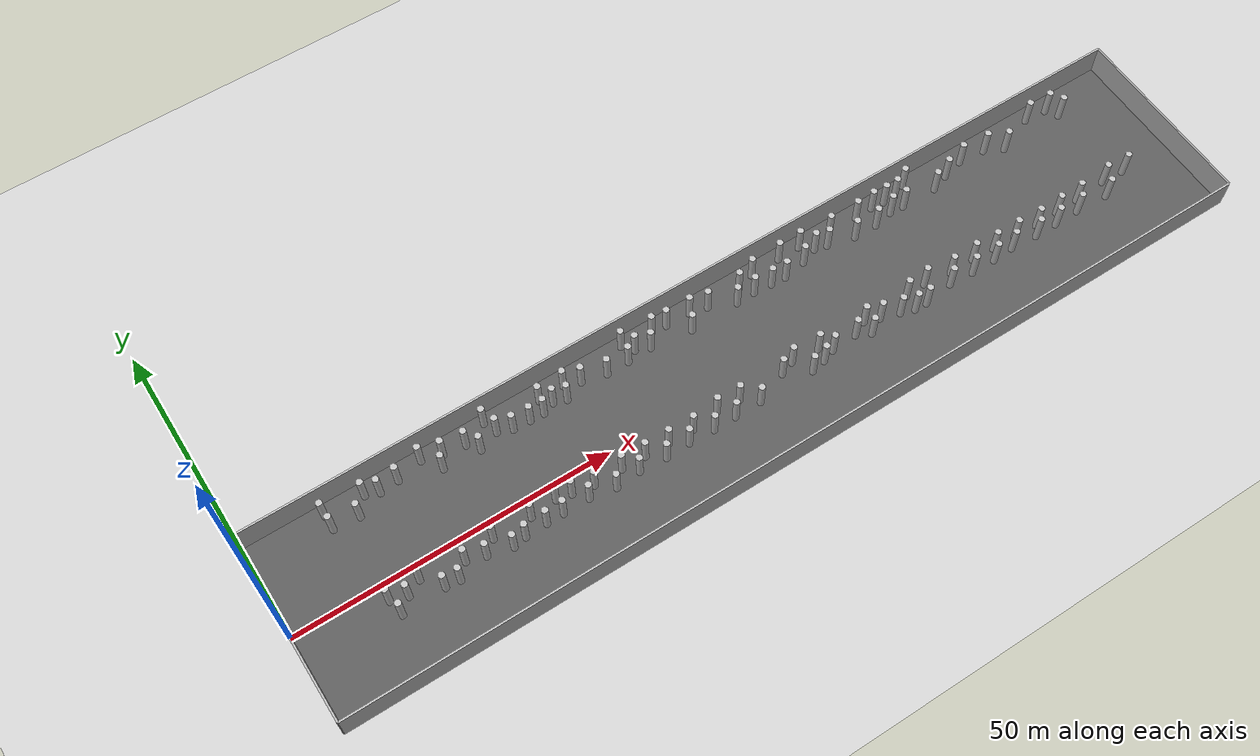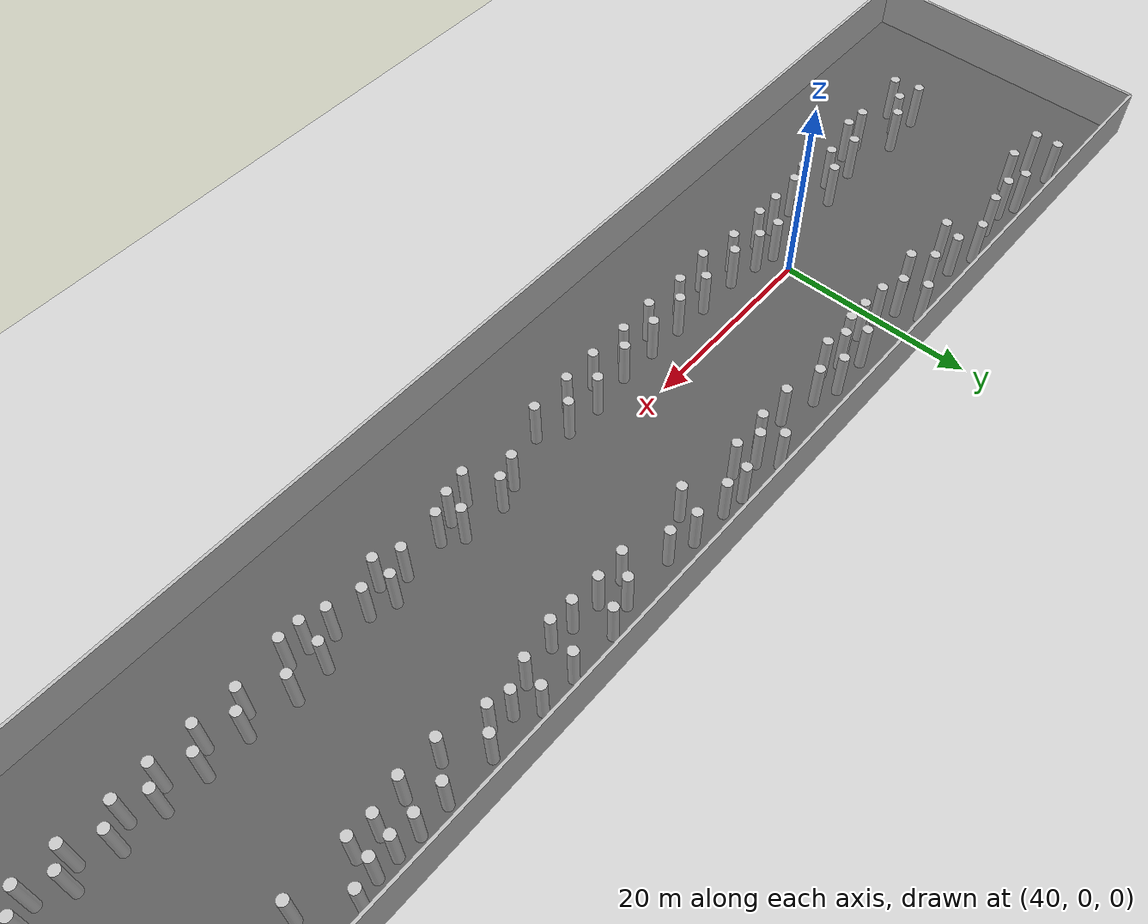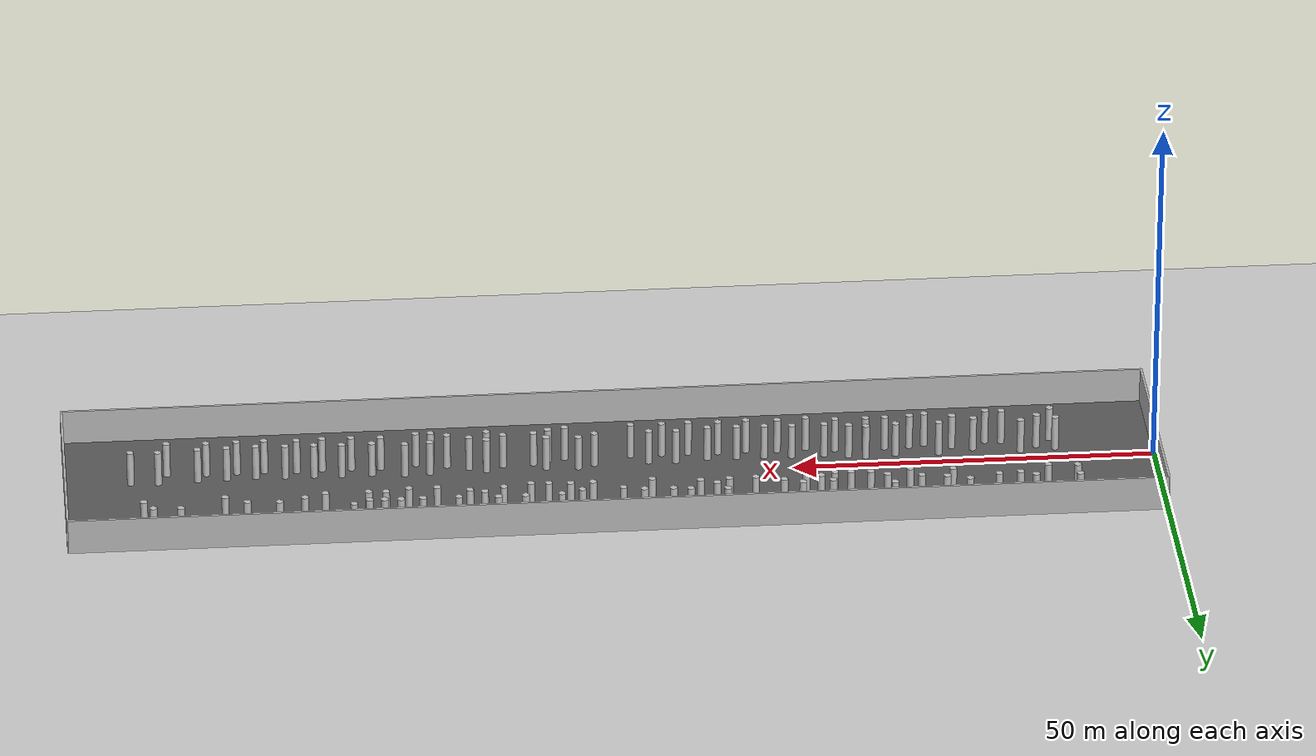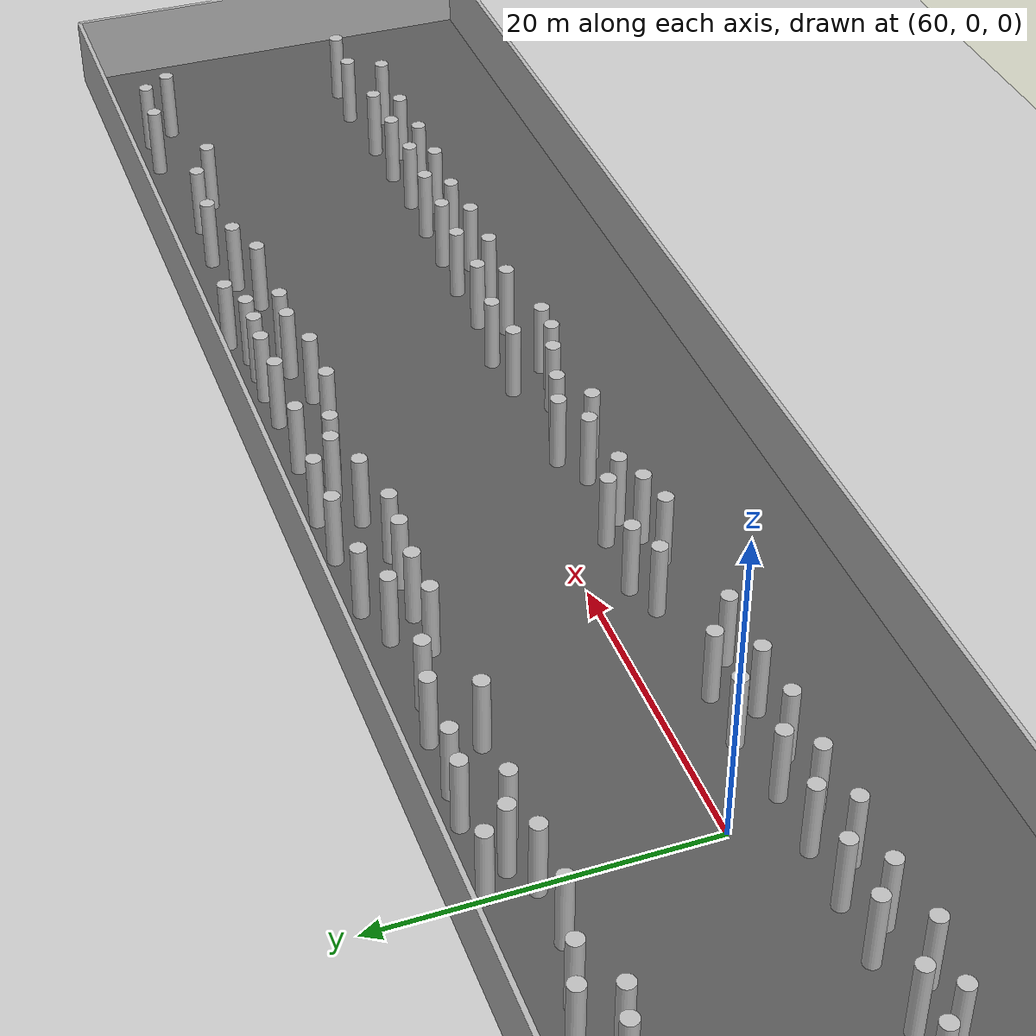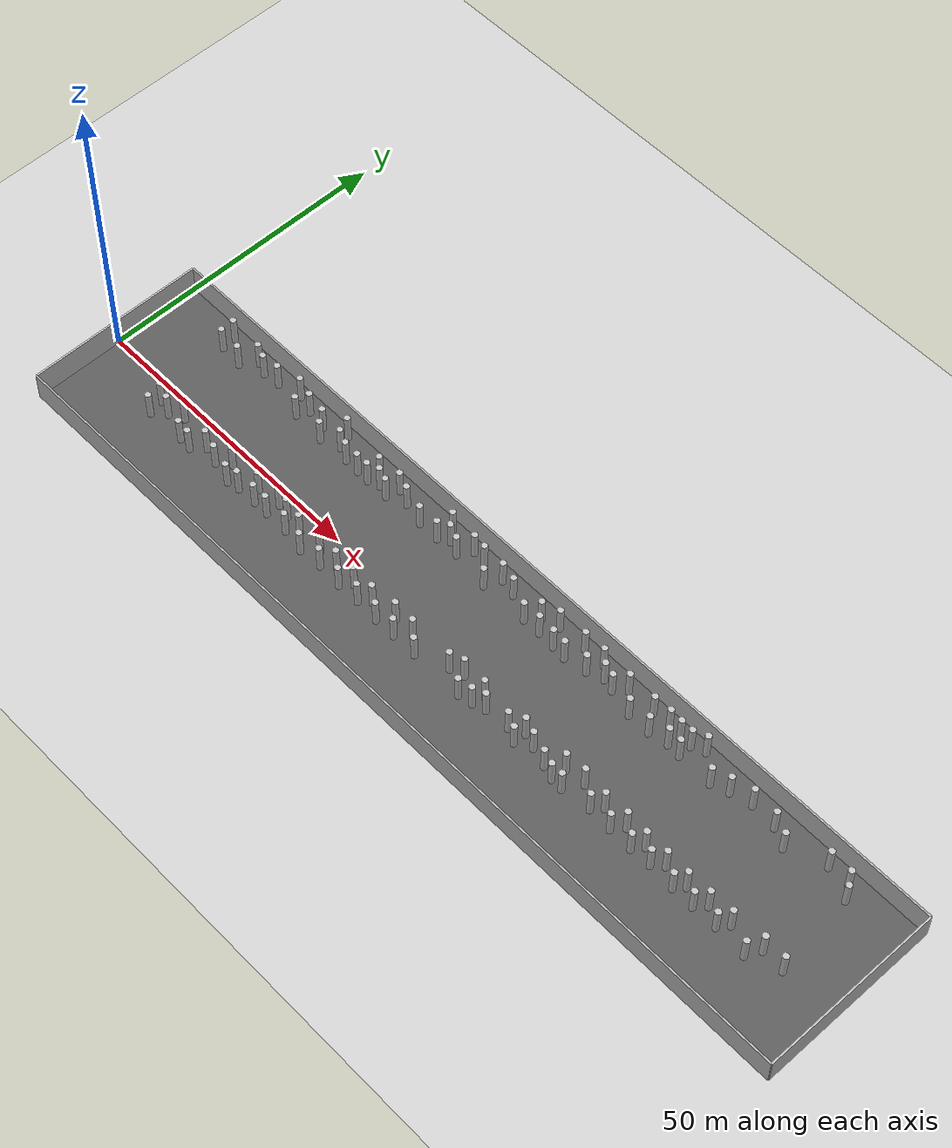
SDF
<?xml version="1.0" ?>
<sdf version="1.5">
  <world name="default">
    <plugin name="gazebo_ros_state" filename="libgazebo_ros_state.so">
      <ros>
        <namespace>/gazebo</namespace>
      </ros>
      <update_rate>20.0</update_rate>
    </plugin>

    <include><uri>model://sun</uri></include>
    <include><uri>model://ground_plane</uri></include>

    <model name="corridor_floor">
      <static>true</static>
      <pose>75 0 0.01 0 0 0</pose>
      <link name="link">
        <collision name="collision">
          <geometry><box><size>150 30 0.02</size></box></geometry>
        </collision>
        <visual name="visual">
          <geometry><box><size>150 30 0.02</size></box></geometry>
          <material>
            <ambient>0.25 0.25 0.25 1</ambient>
            <diffuse>0.35 0.35 0.35 1</diffuse>
          </material>
        </visual>
      </link>
    </model>

    <physics name="default_physics" default="0" type="ode">
      <gravity>0 0 -9.8066</gravity>
      <ode>
        <solver>
          <type>quick</type>
          <iters>10</iters>
          <sor>1.3</sor>
          <use_dynamic_moi_rescaling>0</use_dynamic_moi_rescaling>
        </solver>
        <constraints>
          <cfm>0</cfm>
          <erp>0.2</erp>
          <contact_max_correcting_vel>100</contact_max_correcting_vel>
          <contact_surface_layer>0.001</contact_surface_layer>
        </constraints>
      </ode>
      <max_step_size>0.004</max_step_size>
      <real_time_factor>1</real_time_factor>
      <real_time_update_rate>250</real_time_update_rate>
      <magnetic_field>6.0e-6 2.3e-5 -4.2e-5</magnetic_field>
    </physics>

    <model name="left_wall">
      <static>true</static>
      <pose>75 15.15 2.5 0 0 0</pose>
      <link name="link">
        <collision name="collision">
          <geometry><box><size>150 0.3 5</size></box></geometry>
        </collision>
        <visual name="visual">
          <geometry><box><size>150 0.3 5</size></box></geometry>
        </visual>
      </link>
    </model>

    <model name="right_wall">
      <static>true</static>
      <pose>75 -15.15 2.5 0 0 0</pose>
      <link name="link">
        <collision name="collision">
          <geometry><box><size>150 0.3 5</size></box></geometry>
        </collision>
        <visual name="visual">
          <geometry><box><size>150 0.3 5</size></box></geometry>
        </visual>
      </link>
    </model>

    <model name="start_wall">
      <static>true</static>
      <pose>0 0 2.5 0 0 0</pose>
      <link name="link">
        <collision name="collision">
          <geometry><box><size>0.3 30.3 5</size></box></geometry>
        </collision>
        <visual name="visual">
          <geometry><box><size>0.3 30.3 5</size></box></geometry>
        </visual>
      </link>
    </model>

    <model name="end_wall">
      <static>true</static>
      <pose>150 0 2.5 0 0 0</pose>
      <link name="link">
        <collision name="collision">
          <geometry><box><size>0.3 30.3 5</size></box></geometry>
        </collision>
        <visual name="visual">
          <geometry><box><size>0.3 30.3 5</size></box></geometry>
        </visual>
      </link>
    </model>

    <include><name>cylinder_000</name><uri>model://cylinder_r05_h5</uri><pose>35.606 -2.594 2.5 0 0 0</pose></include>
    <include><name>cylinder_001</name><uri>model://cylinder_r05_h5</uri><pose>24.791 -3.308 2.5 0 0 0</pose></include>
    <include><name>cylinder_002</name><uri>model://cylinder_r05_h5</uri><pose>15.996 -3.470 2.5 0 0 0</pose></include>
    <include><name>cylinder_003</name><uri>model://cylinder_r05_h5</uri><pose>29.619 -2.472 2.5 0 0 0</pose></include>
    <include><name>cylinder_004</name><uri>model://cylinder_r05_h5</uri><pose>39.739 -2.212 2.5 0 0 0</pose></include>
    <include><name>cylinder_005</name><uri>model://cylinder_r05_h5</uri><pose>27.653 -4.179 2.5 0 0 0</pose></include>
    <include><name>cylinder_006</name><uri>model://cylinder_r05_h5</uri><pose>36.921 -4.528 2.5 0 0 0</pose></include>
    <include><name>cylinder_007</name><uri>model://cylinder_r05_h5</uri><pose>20.718 -5.039 2.5 0 0 0</pose></include>
    <include><name>cylinder_008</name><uri>model://cylinder_r05_h5</uri><pose>42.085 -2.692 2.5 0 0 0</pose></include>
    <include><name>cylinder_009</name><uri>model://cylinder_r05_h5</uri><pose>33.499 -4.661 2.5 0 0 0</pose></include>
    <include><name>cylinder_010</name><uri>model://cylinder_r05_h5</uri><pose>39.605 -4.525 2.5 0 0 0</pose></include>
    <include><name>cylinder_011</name><uri>model://cylinder_r05_h5</uri><pose>31.410 -5.068 2.5 0 0 0</pose></include>
    <include><name>cylinder_012</name><uri>model://cylinder_r05_h5</uri><pose>22.955 -5.229 2.5 0 0 0</pose></include>
    <include><name>cylinder_013</name><uri>model://cylinder_r05_h5</uri><pose>18.320 -2.205 2.5 0 0 0</pose></include>
    <include><name>cylinder_014</name><uri>model://cylinder_r05_h5</uri><pose>43.799 -4.543 2.5 0 0 0</pose></include>
    <include><name>cylinder_015</name><uri>model://cylinder_r05_h5</uri><pose>47.811 -5.232 2.5 0 0 0</pose></include>
    <include><name>cylinder_016</name><uri>model://cylinder_r05_h5</uri><pose>45.416 -3.224 2.5 0 0 0</pose></include>
    <include><name>cylinder_017</name><uri>model://cylinder_r05_h5</uri><pose>51.770 -4.909 2.5 0 0 0</pose></include>
    <include><name>cylinder_018</name><uri>model://cylinder_r05_h5</uri><pose>49.899 -3.228 2.5 0 0 0</pose></include>
    <include><name>cylinder_019</name><uri>model://cylinder_r05_h5</uri><pose>56.079 -5.179 2.5 0 0 0</pose></include>
    <include><name>cylinder_020</name><uri>model://cylinder_r05_h5</uri><pose>53.679 -3.387 2.5 0 0 0</pose></include>
    <include><name>cylinder_021</name><uri>model://cylinder_r05_h5</uri><pose>59.954 -5.020 2.5 0 0 0</pose></include>
    <include><name>cylinder_022</name><uri>model://cylinder_r05_h5</uri><pose>57.510 -3.481 2.5 0 0 0</pose></include>
    <include><name>cylinder_023</name><uri>model://cylinder_r05_h5</uri><pose>64.063 -5.213 2.5 0 0 0</pose></include>
    <include><name>cylinder_024</name><uri>model://cylinder_r05_h5</uri><pose>61.547 -3.582 2.5 0 0 0</pose></include>
    <include><name>cylinder_025</name><uri>model://cylinder_r05_h5</uri><pose>67.719 -5.173 2.5 0 0 0</pose></include>
    <include><name>cylinder_026</name><uri>model://cylinder_r05_h5</uri><pose>65.911 -3.068 2.5 0 0 0</pose></include>
    <include><name>cylinder_027</name><uri>model://cylinder_r05_h5</uri><pose>72.026 -5.154 2.5 0 0 0</pose></include>
    <include><name>cylinder_028</name><uri>model://cylinder_r05_h5</uri><pose>69.657 -3.242 2.5 0 0 0</pose></include>
    <include><name>cylinder_029</name><uri>model://cylinder_r05_h5</uri><pose>99.867 -2.539 2.5 0 0 0</pose></include>
    <include><name>cylinder_030</name><uri>model://cylinder_r05_h5</uri><pose>99.619 -5.038 2.5 0 0 0</pose></include>
    <include><name>cylinder_031</name><uri>model://cylinder_r05_h5</uri><pose>94.399 -3.435 2.5 0 0 0</pose></include>
    <include><name>cylinder_032</name><uri>model://cylinder_r05_h5</uri><pose>79.409 -2.376 2.5 0 0 0</pose></include>
    <include><name>cylinder_033</name><uri>model://cylinder_r05_h5</uri><pose>89.729 -3.761 2.5 0 0 0</pose></include>
    <include><name>cylinder_034</name><uri>model://cylinder_r05_h5</uri><pose>91.938 -4.820 2.5 0 0 0</pose></include>
    <include><name>cylinder_035</name><uri>model://cylinder_r05_h5</uri><pose>77.157 -3.161 2.5 0 0 0</pose></include>
    <include><name>cylinder_036</name><uri>model://cylinder_r05_h5</uri><pose>92.057 -2.645 2.5 0 0 0</pose></include>
    <include><name>cylinder_037</name><uri>model://cylinder_r05_h5</uri><pose>85.510 -4.000 2.5 0 0 0</pose></include>
    <include><name>cylinder_038</name><uri>model://cylinder_r05_h5</uri><pose>97.412 -4.316 2.5 0 0 0</pose></include>
    <include><name>cylinder_039</name><uri>model://cylinder_r05_h5</uri><pose>83.839 -2.663 2.5 0 0 0</pose></include>
    <include><name>cylinder_040</name><uri>model://cylinder_r05_h5</uri><pose>81.127 -5.172 2.5 0 0 0</pose></include>
    <include><name>cylinder_041</name><uri>model://cylinder_r05_h5</uri><pose>103.315 -2.300 2.5 0 0 0</pose></include>
    <include><name>cylinder_042</name><uri>model://cylinder_r05_h5</uri><pose>101.650 -5.115 2.5 0 0 0</pose></include>
    <include><name>cylinder_043</name><uri>model://cylinder_r05_h5</uri><pose>83.465 -4.732 2.5 0 0 0</pose></include>
    <include><name>cylinder_044</name><uri>model://cylinder_r05_h5</uri><pose>107.802 -2.863 2.5 0 0 0</pose></include>
    <include><name>cylinder_045</name><uri>model://cylinder_r05_h5</uri><pose>106.529 -4.443 2.5 0 0 0</pose></include>
    <include><name>cylinder_046</name><uri>model://cylinder_r05_h5</uri><pose>111.946 -2.798 2.5 0 0 0</pose></include>
    <include><name>cylinder_047</name><uri>model://cylinder_r05_h5</uri><pose>110.554 -4.633 2.5 0 0 0</pose></include>
    <include><name>cylinder_048</name><uri>model://cylinder_r05_h5</uri><pose>115.752 -3.020 2.5 0 0 0</pose></include>
    <include><name>cylinder_049</name><uri>model://cylinder_r05_h5</uri><pose>114.558 -4.693 2.5 0 0 0</pose></include>
    <include><name>cylinder_050</name><uri>model://cylinder_r05_h5</uri><pose>119.694 -3.089 2.5 0 0 0</pose></include>
    <include><name>cylinder_051</name><uri>model://cylinder_r05_h5</uri><pose>118.074 -4.482 2.5 0 0 0</pose></include>
    <include><name>cylinder_052</name><uri>model://cylinder_r05_h5</uri><pose>123.719 -3.270 2.5 0 0 0</pose></include>
    <include><name>cylinder_053</name><uri>model://cylinder_r05_h5</uri><pose>122.522 -4.766 2.5 0 0 0</pose></include>
    <include><name>cylinder_054</name><uri>model://cylinder_r05_h5</uri><pose>127.719 -3.154 2.5 0 0 0</pose></include>
    <include><name>cylinder_055</name><uri>model://cylinder_r05_h5</uri><pose>126.292 -4.767 2.5 0 0 0</pose></include>
    <include><name>cylinder_056</name><uri>model://cylinder_r05_h5</uri><pose>131.719 -3.034 2.5 0 0 0</pose></include>
    <include><name>cylinder_057</name><uri>model://cylinder_r05_h5</uri><pose>130.493 -4.678 2.5 0 0 0</pose></include>
    <include><name>cylinder_058</name><uri>model://cylinder_r05_h5</uri><pose>13.478 -2.641 2.5 0 0 0</pose></include>
    <include><name>cylinder_059</name><uri>model://cylinder_r05_h5</uri><pose>14.006 -5.290 2.5 0 0 0</pose></include>
    <include><name>cylinder_060</name><uri>model://cylinder_r05_h5</uri><pose>140.930 -2.859 2.5 0 0 0</pose></include>
    <include><name>cylinder_061</name><uri>model://cylinder_r05_h5</uri><pose>135.912 -4.963 2.5 0 0 0</pose></include>
    <include><name>cylinder_062</name><uri>model://cylinder_r05_h5</uri><pose>137.139 -2.653 2.5 0 0 0</pose></include>
    <include><name>cylinder_063</name><uri>model://cylinder_r05_h5</uri><pose>79.932 12.053 2.5 0 0 0</pose></include>
    <include><name>cylinder_064</name><uri>model://cylinder_r05_h5</uri><pose>43.059 10.169 2.5 0 0 0</pose></include>
    <include><name>cylinder_065</name><uri>model://cylinder_r05_h5</uri><pose>104.686 12.760 2.5 0 0 0</pose></include>
    <include><name>cylinder_066</name><uri>model://cylinder_r05_h5</uri><pose>121.149 12.158 2.5 0 0 0</pose></include>
    <include><name>cylinder_067</name><uri>model://cylinder_r05_h5</uri><pose>65.190 12.903 2.5 0 0 0</pose></include>
    <include><name>cylinder_068</name><uri>model://cylinder_r05_h5</uri><pose>38.134 11.210 2.5 0 0 0</pose></include>
    <include><name>cylinder_069</name><uri>model://cylinder_r05_h5</uri><pose>117.681 11.271 2.5 0 0 0</pose></include>
    <include><name>cylinder_070</name><uri>model://cylinder_r05_h5</uri><pose>27.012 13.171 2.5 0 0 0</pose></include>
    <include><name>cylinder_071</name><uri>model://cylinder_r05_h5</uri><pose>101.703 12.659 2.5 0 0 0</pose></include>
    <include><name>cylinder_072</name><uri>model://cylinder_r05_h5</uri><pose>134.584 12.789 2.5 0 0 0</pose></include>
    <include><name>cylinder_073</name><uri>model://cylinder_r05_h5</uri><pose>71.499 12.512 2.5 0 0 0</pose></include>
    <include><name>cylinder_074</name><uri>model://cylinder_r05_h5</uri><pose>45.675 12.161 2.5 0 0 0</pose></include>
    <include><name>cylinder_075</name><uri>model://cylinder_r05_h5</uri><pose>56.124 10.548 2.5 0 0 0</pose></include>
    <include><name>cylinder_076</name><uri>model://cylinder_r05_h5</uri><pose>37.297 13.404 2.5 0 0 0</pose></include>
    <include><name>cylinder_077</name><uri>model://cylinder_r05_h5</uri><pose>81.410 10.190 2.5 0 0 0</pose></include>
    <include><name>cylinder_078</name><uri>model://cylinder_r05_h5</uri><pose>67.545 12.632 2.5 0 0 0</pose></include>
    <include><name>cylinder_079</name><uri>model://cylinder_r05_h5</uri><pose>138.304 12.568 2.5 0 0 0</pose></include>
    <include><name>cylinder_080</name><uri>model://cylinder_r05_h5</uri><pose>11.957 10.680 2.5 0 0 0</pose></include>
    <include><name>cylinder_081</name><uri>model://cylinder_r05_h5</uri><pose>95.206 10.962 2.5 0 0 0</pose></include>
    <include><name>cylinder_082</name><uri>model://cylinder_r05_h5</uri><pose>11.890 13.054 2.5 0 0 0</pose></include>
    <include><name>cylinder_083</name><uri>model://cylinder_r05_h5</uri><pose>96.809 12.708 2.5 0 0 0</pose></include>
    <include><name>cylinder_084</name><uri>model://cylinder_r05_h5</uri><pose>103.471 9.899 2.5 0 0 0</pose></include>
    <include><name>cylinder_085</name><uri>model://cylinder_r05_h5</uri><pose>34.912 10.016 2.5 0 0 0</pose></include>
    <include><name>cylinder_086</name><uri>model://cylinder_r05_h5</uri><pose>22.920 12.227 2.5 0 0 0</pose></include>
    <include><name>cylinder_087</name><uri>model://cylinder_r05_h5</uri><pose>60.161 13.286 2.5 0 0 0</pose></include>
    <include><name>cylinder_088</name><uri>model://cylinder_r05_h5</uri><pose>33.515 11.816 2.5 0 0 0</pose></include>
    <include><name>cylinder_089</name><uri>model://cylinder_r05_h5</uri><pose>86.815 9.848 2.5 0 0 0</pose></include>
    <include><name>cylinder_090</name><uri>model://cylinder_r05_h5</uri><pose>108.956 10.373 2.5 0 0 0</pose></include>
    <include><name>cylinder_091</name><uri>model://cylinder_r05_h5</uri><pose>47.201 10.815 2.5 0 0 0</pose></include>
    <include><name>cylinder_092</name><uri>model://cylinder_r05_h5</uri><pose>52.325 11.506 2.5 0 0 0</pose></include>
    <include><name>cylinder_093</name><uri>model://cylinder_r05_h5</uri><pose>125.538 11.820 2.5 0 0 0</pose></include>
    <include><name>cylinder_094</name><uri>model://cylinder_r05_h5</uri><pose>78.353 10.125 2.5 0 0 0</pose></include>
    <include><name>cylinder_095</name><uri>model://cylinder_r05_h5</uri><pose>19.966 11.962 2.5 0 0 0</pose></include>
    <include><name>cylinder_096</name><uri>model://cylinder_r05_h5</uri><pose>84.386 9.992 2.5 0 0 0</pose></include>
    <include><name>cylinder_097</name><uri>model://cylinder_r05_h5</uri><pose>87.734 13.033 2.5 0 0 0</pose></include>
    <include><name>cylinder_098</name><uri>model://cylinder_r05_h5</uri><pose>17.925 12.774 2.5 0 0 0</pose></include>
    <include><name>cylinder_099</name><uri>model://cylinder_r05_h5</uri><pose>99.590 9.920 2.5 0 0 0</pose></include>
    <include><name>cylinder_100</name><uri>model://cylinder_r05_h5</uri><pose>70.270 9.912 2.5 0 0 0</pose></include>
    <include><name>cylinder_101</name><uri>model://cylinder_r05_h5</uri><pose>30.085 12.287 2.5 0 0 0</pose></include>
    <include><name>cylinder_102</name><uri>model://cylinder_r05_h5</uri><pose>29.070 10.383 2.5 0 0 0</pose></include>
    <include><name>cylinder_103</name><uri>model://cylinder_r05_h5</uri><pose>139.537 10.743 2.5 0 0 0</pose></include>
    <include><name>cylinder_104</name><uri>model://cylinder_r05_h5</uri><pose>45.263 10.103 2.5 0 0 0</pose></include>
    <include><name>cylinder_105</name><uri>model://cylinder_r05_h5</uri><pose>108.969 12.609 2.5 0 0 0</pose></include>
    <include><name>cylinder_106</name><uri>model://cylinder_r05_h5</uri><pose>49.176 10.172 2.5 0 0 0</pose></include>
    <include><name>cylinder_107</name><uri>model://cylinder_r05_h5</uri><pose>114.862 10.316 2.5 0 0 0</pose></include>
    <include><name>cylinder_108</name><uri>model://cylinder_r05_h5</uri><pose>93.212 11.498 2.5 0 0 0</pose></include>
    <include><name>cylinder_109</name><uri>model://cylinder_r05_h5</uri><pose>61.496 11.629 2.5 0 0 0</pose></include>
    <include><name>cylinder_110</name><uri>model://cylinder_r05_h5</uri><pose>91.442 13.066 2.5 0 0 0</pose></include>
    <include><name>cylinder_111</name><uri>model://cylinder_r05_h5</uri><pose>106.917 12.622 2.5 0 0 0</pose></include>
    <include><name>cylinder_112</name><uri>model://cylinder_r05_h5</uri><pose>74.321 11.896 2.5 0 0 0</pose></include>
    <include><name>cylinder_113</name><uri>model://cylinder_r05_h5</uri><pose>63.703 10.754 2.5 0 0 0</pose></include>
    <include><name>cylinder_114</name><uri>model://cylinder_r05_h5</uri><pose>82.783 12.929 2.5 0 0 0</pose></include>
    <include><name>cylinder_115</name><uri>model://cylinder_r05_h5</uri><pose>59.745 10.599 2.5 0 0 0</pose></include>
    <include><name>cylinder_116</name><uri>model://cylinder_r05_h5</uri><pose>128.475 10.355 2.5 0 0 0</pose></include>
    <include><name>cylinder_117</name><uri>model://cylinder_r05_h5</uri><pose>49.829 12.399 2.5 0 0 0</pose></include>
    <include><name>cylinder_118</name><uri>model://cylinder_r05_h5</uri><pose>15.975 10.318 2.5 0 0 0</pose></include>
    <include><name>cylinder_119</name><uri>model://cylinder_r05_h5</uri><pose>106.622 10.527 2.5 0 0 0</pose></include>
    <include><name>cylinder_120</name><uri>model://cylinder_r05_h5</uri><pose>111.108 13.498 2.5 0 0 0</pose></include>
    <include><name>cylinder_121</name><uri>model://cylinder_r05_h5</uri><pose>90.552 10.512 2.5 0 0 0</pose></include>
    <include><name>cylinder_122</name><uri>model://cylinder_r05_h5</uri><pose>40.354 10.297 2.5 0 0 0</pose></include>

  </world>
</sdf>

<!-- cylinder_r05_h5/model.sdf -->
<sdf version="1.5">
  <model name="cylinder_r05_h5">
    <static>true</static>
    <link name="link">
      <collision name="collision">
        <geometry>
          <cylinder>
            <radius>0.5</radius>
            <length>5</length>
          </cylinder>
        </geometry>
      </collision>
      <visual name="visual">
        <geometry>
          <cylinder>
            <radius>0.5</radius>
            <length>5</length>
          </cylinder>
        </geometry>
        <material>
          <ambient>0.5 0.5 0.5 1</ambient>
          <diffuse>0.75 0.75 0.75 1</diffuse>
        </material>
      </visual>
    </link>
  </model>
</sdf>
